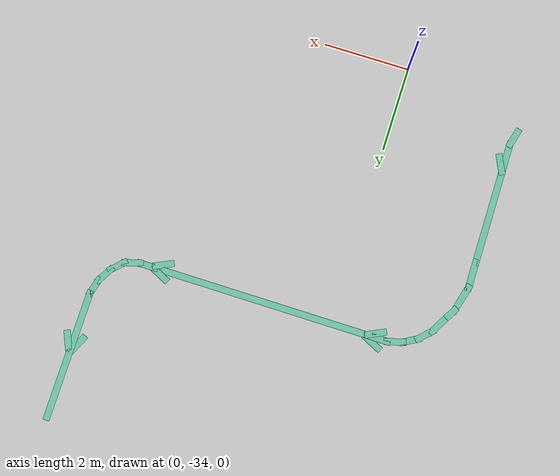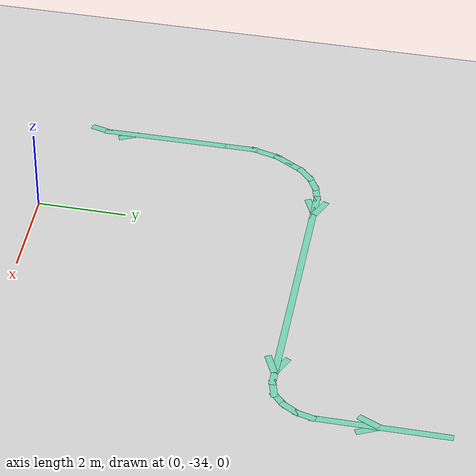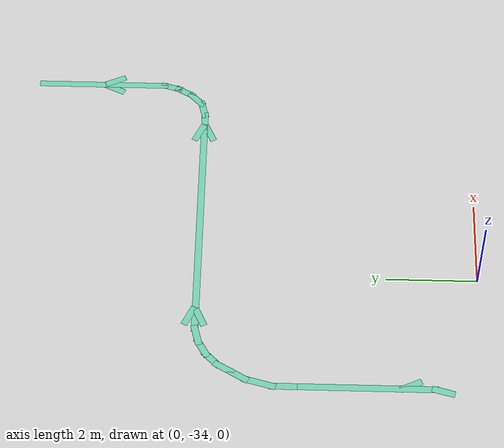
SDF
<sdf version="1.6">
 <world name="world">
  <model name="ground_plane">
   <static>1</static>
   <link name="link">
    <collision name="collision">
     <geometry><plane><normal>0 0 1</normal><size>100 100</size></plane></geometry>
     <surface><friction><ode><mu>100</mu><mu2>50</mu2></ode></friction></surface>
    </collision>
    <visual name="visual">
     <cast_shadows>0</cast_shadows>
     <geometry><plane><normal>0 0 1</normal><size>100 100</size></plane></geometry>
     <material>
      <script><uri>file://media/materials/scripts/gazebo.material</uri><name>Gazebo/Grey</name></script>
     </material>
    </visual>
   </link>
   <pose>0 0 -0.1 0 -0 0</pose>
  </model>
  <model name="path_hospital">
   <link name="Wall_10">
    <pose>6.85995 0.436094 0 0 0 -1.8326</pose>
    <visual name="Wall_10_Visual">
     <geometry><box><size>0.5 0.15 0</size></box></geometry>
     <material>
      <script><uri>file://media/materials/scripts/gazebo.material</uri><name>Gazebo/Grey</name></script>
      <ambient>0.435294 0.796078 0.67451 1</ambient>
      <shader type="pixel"/>
     </material>
     <meta><layer>0</layer></meta>
    </visual>
    <collision name="Wall_10_Collision">
     <geometry><box><size>0.5 0.15 0</size></box></geometry>
     <surface>
      <friction>
       <ode><mu>1</mu><mu2>1</mu2><fdir1>0 0 0</fdir1><slip1>0</slip1><slip2>0</slip2></ode>
       <torsional>
        <coefficient>1</coefficient>
        <patch_radius>0</patch_radius>
        <surface_radius>0</surface_radius>
        <use_patch_radius>1</use_patch_radius>
        <ode><slip>0</slip></ode>
       </torsional>
      </friction>
      <bounce><restitution_coefficient>0</restitution_coefficient><threshold>1e+06</threshold></bounce>
      <contact>
       <collide_without_contact>0</collide_without_contact>
       <collide_without_contact_bitmask>1</collide_without_contact_bitmask>
       <collide_bitmask>1</collide_bitmask>
       <ode>
        <soft_cfm>0</soft_cfm>
        <soft_erp>0.2</soft_erp>
        <kp>1e+13</kp>
        <kd>1</kd>
        <max_vel>0.01</max_vel>
        <min_depth>0</min_depth>
       </ode>
       <bullet>
        <split_impulse>1</split_impulse>
        <split_impulse_penetration_threshold>-0.01</split_impulse_penetration_threshold>
        <soft_cfm>0</soft_cfm>
        <soft_erp>0.2</soft_erp>
        <kp>1e+13</kp>
        <kd>1</kd>
       </bullet>
      </contact>
     </surface>
    </collision>
   </link>
   <link name="Wall_11">
    <pose>6.72715 0.115501 0 0 0 -2.0944</pose>
    <visual name="Wall_11_Visual">
     <geometry><box><size>0.5 0.15 0</size></box></geometry>
     <material>
      <script><uri>file://media/materials/scripts/gazebo.material</uri><name>Gazebo/Grey</name></script>
      <ambient>0.435294 0.796078 0.67451 1</ambient>
      <shader type="pixel"/>
     </material>
     <meta><layer>0</layer></meta>
    </visual>
    <collision name="Wall_11_Collision">
     <geometry><box><size>0.5 0.15 0</size></box></geometry>
     <surface>
      <friction>
       <ode><mu>1</mu><mu2>1</mu2><fdir1>0 0 0</fdir1><slip1>0</slip1><slip2>0</slip2></ode>
       <torsional>
        <coefficient>1</coefficient>
        <patch_radius>0</patch_radius>
        <surface_radius>0</surface_radius>
        <use_patch_radius>1</use_patch_radius>
        <ode><slip>0</slip></ode>
       </torsional>
      </friction>
      <bounce><restitution_coefficient>0</restitution_coefficient><threshold>1e+06</threshold></bounce>
      <contact>
       <collide_without_contact>0</collide_without_contact>
       <collide_without_contact_bitmask>1</collide_without_contact_bitmask>
       <collide_bitmask>1</collide_bitmask>
       <ode>
        <soft_cfm>0</soft_cfm>
        <soft_erp>0.2</soft_erp>
        <kp>1e+13</kp>
        <kd>1</kd>
        <max_vel>0.01</max_vel>
        <min_depth>0</min_depth>
       </ode>
       <bullet>
        <split_impulse>1</split_impulse>
        <split_impulse_penetration_threshold>-0.01</split_impulse_penetration_threshold>
        <soft_cfm>0</soft_cfm>
        <soft_erp>0.2</soft_erp>
        <kp>1e+13</kp>
        <kd>1</kd>
       </bullet>
      </contact>
     </surface>
    </collision>
   </link>
   <link name="Wall_12">
    <pose>6.51591 -0.159796 0 0 0 -2.35619</pose>
    <visual name="Wall_12_Visual">
     <geometry><box><size>0.5 0.15 0</size></box></geometry>
     <material>
      <script><uri>file://media/materials/scripts/gazebo.material</uri><name>Gazebo/Grey</name></script>
      <ambient>0.435294 0.796078 0.67451 1</ambient>
      <shader type="pixel"/>
     </material>
     <meta><layer>0</layer></meta>
    </visual>
    <collision name="Wall_12_Collision">
     <geometry><box><size>0.5 0.15 0</size></box></geometry>
     <surface>
      <friction>
       <ode><mu>1</mu><mu2>1</mu2><fdir1>0 0 0</fdir1><slip1>0</slip1><slip2>0</slip2></ode>
       <torsional>
        <coefficient>1</coefficient>
        <patch_radius>0</patch_radius>
        <surface_radius>0</surface_radius>
        <use_patch_radius>1</use_patch_radius>
        <ode><slip>0</slip></ode>
       </torsional>
      </friction>
      <bounce><restitution_coefficient>0</restitution_coefficient><threshold>1e+06</threshold></bounce>
      <contact>
       <collide_without_contact>0</collide_without_contact>
       <collide_without_contact_bitmask>1</collide_without_contact_bitmask>
       <collide_bitmask>1</collide_bitmask>
       <ode>
        <soft_cfm>0</soft_cfm>
        <soft_erp>0.2</soft_erp>
        <kp>1e+13</kp>
        <kd>1</kd>
        <max_vel>0.01</max_vel>
        <min_depth>0</min_depth>
       </ode>
       <bullet>
        <split_impulse>1</split_impulse>
        <split_impulse_penetration_threshold>-0.01</split_impulse_penetration_threshold>
        <soft_cfm>0</soft_cfm>
        <soft_erp>0.2</soft_erp>
        <kp>1e+13</kp>
        <kd>1</kd>
       </bullet>
      </contact>
     </surface>
    </collision>
   </link>
   <link name="Wall_13">
    <pose>6.22313 -0.328833 0 0 0 -2.87979</pose>
    <visual name="Wall_13_Visual">
     <geometry><box><size>0.5 0.15 0</size></box></geometry>
     <material>
      <script><uri>file://media/materials/scripts/gazebo.material</uri><name>Gazebo/Grey</name></script>
      <ambient>0.435294 0.796078 0.67451 1</ambient>
      <shader type="pixel"/>
     </material>
     <meta><layer>0</layer></meta>
    </visual>
    <collision name="Wall_13_Collision">
     <geometry><box><size>0.5 0.15 0</size></box></geometry>
     <surface>
      <friction>
       <ode><mu>1</mu><mu2>1</mu2><fdir1>0 0 0</fdir1><slip1>0</slip1><slip2>0</slip2></ode>
       <torsional>
        <coefficient>1</coefficient>
        <patch_radius>0</patch_radius>
        <surface_radius>0</surface_radius>
        <use_patch_radius>1</use_patch_radius>
        <ode><slip>0</slip></ode>
       </torsional>
      </friction>
      <bounce><restitution_coefficient>0</restitution_coefficient><threshold>1e+06</threshold></bounce>
      <contact>
       <collide_without_contact>0</collide_without_contact>
       <collide_without_contact_bitmask>1</collide_without_contact_bitmask>
       <collide_bitmask>1</collide_bitmask>
       <ode>
        <soft_cfm>0</soft_cfm>
        <soft_erp>0.2</soft_erp>
        <kp>1e+13</kp>
        <kd>1</kd>
        <max_vel>0.01</max_vel>
        <min_depth>0</min_depth>
       </ode>
       <bullet>
        <split_impulse>1</split_impulse>
        <split_impulse_penetration_threshold>-0.01</split_impulse_penetration_threshold>
        <soft_cfm>0</soft_cfm>
        <soft_erp>0.2</soft_erp>
        <kp>1e+13</kp>
        <kd>1</kd>
       </bullet>
      </contact>
     </surface>
    </collision>
   </link>
   <link name="Wall_14">
    <pose>5.87909 -0.374126 0 0 -0 3.14159</pose>
    <visual name="Wall_14_Visual">
     <geometry><box><size>0.5 0.15 0</size></box></geometry>
     <material>
      <script><uri>file://media/materials/scripts/gazebo.material</uri><name>Gazebo/Grey</name></script>
      <ambient>0.435294 0.796078 0.67451 1</ambient>
      <shader type="pixel"/>
     </material>
     <meta><layer>0</layer></meta>
    </visual>
    <collision name="Wall_14_Collision">
     <geometry><box><size>0.5 0.15 0</size></box></geometry>
     <surface>
      <friction>
       <ode><mu>1</mu><mu2>1</mu2><fdir1>0 0 0</fdir1><slip1>0</slip1><slip2>0</slip2></ode>
       <torsional>
        <coefficient>1</coefficient>
        <patch_radius>0</patch_radius>
        <surface_radius>0</surface_radius>
        <use_patch_radius>1</use_patch_radius>
        <ode><slip>0</slip></ode>
       </torsional>
      </friction>
      <bounce><restitution_coefficient>0</restitution_coefficient><threshold>1e+06</threshold></bounce>
      <contact>
       <collide_without_contact>0</collide_without_contact>
       <collide_without_contact_bitmask>1</collide_without_contact_bitmask>
       <collide_bitmask>1</collide_bitmask>
       <ode>
        <soft_cfm>0</soft_cfm>
        <soft_erp>0.2</soft_erp>
        <kp>1e+13</kp>
        <kd>1</kd>
        <max_vel>0.01</max_vel>
        <min_depth>0</min_depth>
       </ode>
       <bullet>
        <split_impulse>1</split_impulse>
        <split_impulse_penetration_threshold>-0.01</split_impulse_penetration_threshold>
        <soft_cfm>0</soft_cfm>
        <soft_erp>0.2</soft_erp>
        <kp>1e+13</kp>
        <kd>1</kd>
       </bullet>
      </contact>
     </surface>
    </collision>
   </link>
   <link name="Wall_15">
    <pose>3.27909 -0.374126 0 0 -0 3.14159</pose>
    <visual name="Wall_15_Visual">
     <geometry><box><size>5 0.15 0</size></box></geometry>
     <material>
      <script><uri>file://media/materials/scripts/gazebo.material</uri><name>Gazebo/Grey</name></script>
      <ambient>0.435294 0.796078 0.67451 1</ambient>
      <shader type="pixel"/>
     </material>
     <meta><layer>0</layer></meta>
    </visual>
    <collision name="Wall_15_Collision">
     <geometry><box><size>5 0.15 0</size></box></geometry>
     <surface>
      <friction>
       <ode><mu>1</mu><mu2>1</mu2><fdir1>0 0 0</fdir1><slip1>0</slip1><slip2>0</slip2></ode>
       <torsional>
        <coefficient>1</coefficient>
        <patch_radius>0</patch_radius>
        <surface_radius>0</surface_radius>
        <use_patch_radius>1</use_patch_radius>
        <ode><slip>0</slip></ode>
       </torsional>
      </friction>
      <bounce><restitution_coefficient>0</restitution_coefficient><threshold>1e+06</threshold></bounce>
      <contact>
       <collide_without_contact>0</collide_without_contact>
       <collide_without_contact_bitmask>1</collide_without_contact_bitmask>
       <collide_bitmask>1</collide_bitmask>
       <ode>
        <soft_cfm>0</soft_cfm>
        <soft_erp>0.2</soft_erp>
        <kp>1e+13</kp>
        <kd>1</kd>
        <max_vel>0.01</max_vel>
        <min_depth>0</min_depth>
       </ode>
       <bullet>
        <split_impulse>1</split_impulse>
        <split_impulse_penetration_threshold>-0.01</split_impulse_penetration_threshold>
        <soft_cfm>0</soft_cfm>
        <soft_erp>0.2</soft_erp>
        <kp>1e+13</kp>
        <kd>1</kd>
       </bullet>
      </contact>
     </surface>
    </collision>
   </link>
   <link name="Wall_16">
    <pose>0.554091 -0.374126 0 0 -0 3.14159</pose>
    <visual name="Wall_16_Visual">
     <geometry><box><size>0.75 0.15 0</size></box></geometry>
     <material>
      <script><uri>file://media/materials/scripts/gazebo.material</uri><name>Gazebo/Grey</name></script>
      <ambient>0.435294 0.796078 0.67451 1</ambient>
      <shader type="pixel"/>
     </material>
     <meta><layer>0</layer></meta>
    </visual>
    <collision name="Wall_16_Collision">
     <geometry><box><size>0.75 0.15 0</size></box></geometry>
     <surface>
      <friction>
       <ode><mu>1</mu><mu2>1</mu2><fdir1>0 0 0</fdir1><slip1>0</slip1><slip2>0</slip2></ode>
       <torsional>
        <coefficient>1</coefficient>
        <patch_radius>0</patch_radius>
        <surface_radius>0</surface_radius>
        <use_patch_radius>1</use_patch_radius>
        <ode><slip>0</slip></ode>
       </torsional>
      </friction>
      <bounce><restitution_coefficient>0</restitution_coefficient><threshold>1e+06</threshold></bounce>
      <contact>
       <collide_without_contact>0</collide_without_contact>
       <collide_without_contact_bitmask>1</collide_without_contact_bitmask>
       <collide_bitmask>1</collide_bitmask>
       <ode>
        <soft_cfm>0</soft_cfm>
        <soft_erp>0.2</soft_erp>
        <kp>1e+13</kp>
        <kd>1</kd>
        <max_vel>0.01</max_vel>
        <min_depth>0</min_depth>
       </ode>
       <bullet>
        <split_impulse>1</split_impulse>
        <split_impulse_penetration_threshold>-0.01</split_impulse_penetration_threshold>
        <soft_cfm>0</soft_cfm>
        <soft_erp>0.2</soft_erp>
        <kp>1e+13</kp>
        <kd>1</kd>
       </bullet>
      </contact>
     </surface>
    </collision>
   </link>
   <link name="Wall_17">
    <pose>0.085054 -0.41942 0 0 0 -2.87979</pose>
    <visual name="Wall_17_Visual">
     <geometry><box><size>0.5 0.15 0</size></box></geometry>
     <material>
      <script><uri>file://media/materials/scripts/gazebo.material</uri><name>Gazebo/Grey</name></script>
      <ambient>0.435294 0.796078 0.67451 1</ambient>
      <shader type="pixel"/>
     </material>
     <meta><layer>0</layer></meta>
    </visual>
    <collision name="Wall_17_Collision">
     <geometry><box><size>0.5 0.15 0</size></box></geometry>
     <surface>
      <friction>
       <ode><mu>1</mu><mu2>1</mu2><fdir1>0 0 0</fdir1><slip1>0</slip1><slip2>0</slip2></ode>
       <torsional>
        <coefficient>1</coefficient>
        <patch_radius>0</patch_radius>
        <surface_radius>0</surface_radius>
        <use_patch_radius>1</use_patch_radius>
        <ode><slip>0</slip></ode>
       </torsional>
      </friction>
      <bounce><restitution_coefficient>0</restitution_coefficient><threshold>1e+06</threshold></bounce>
      <contact>
       <collide_without_contact>0</collide_without_contact>
       <collide_without_contact_bitmask>1</collide_without_contact_bitmask>
       <collide_bitmask>1</collide_bitmask>
       <ode>
        <soft_cfm>0</soft_cfm>
        <soft_erp>0.2</soft_erp>
        <kp>1e+13</kp>
        <kd>1</kd>
        <max_vel>0.01</max_vel>
        <min_depth>0</min_depth>
       </ode>
       <bullet>
        <split_impulse>1</split_impulse>
        <split_impulse_penetration_threshold>-0.01</split_impulse_penetration_threshold>
        <soft_cfm>0</soft_cfm>
        <soft_erp>0.2</soft_erp>
        <kp>1e+13</kp>
        <kd>1</kd>
       </bullet>
      </contact>
     </surface>
    </collision>
   </link>
   <link name="Wall_18">
    <pose>-0.235537 -0.552214 0 0 0 -2.61799</pose>
    <visual name="Wall_18_Visual">
     <geometry><box><size>0.5 0.15 0</size></box></geometry>
     <material>
      <script><uri>file://media/materials/scripts/gazebo.material</uri><name>Gazebo/Grey</name></script>
      <ambient>0.435294 0.796078 0.67451 1</ambient>
      <shader type="pixel"/>
     </material>
     <meta><layer>0</layer></meta>
    </visual>
    <collision name="Wall_18_Collision">
     <geometry><box><size>0.5 0.15 0</size></box></geometry>
     <surface>
      <friction>
       <ode><mu>1</mu><mu2>1</mu2><fdir1>0 0 0</fdir1><slip1>0</slip1><slip2>0</slip2></ode>
       <torsional>
        <coefficient>1</coefficient>
        <patch_radius>0</patch_radius>
        <surface_radius>0</surface_radius>
        <use_patch_radius>1</use_patch_radius>
        <ode><slip>0</slip></ode>
       </torsional>
      </friction>
      <bounce><restitution_coefficient>0</restitution_coefficient><threshold>1e+06</threshold></bounce>
      <contact>
       <collide_without_contact>0</collide_without_contact>
       <collide_without_contact_bitmask>1</collide_without_contact_bitmask>
       <collide_bitmask>1</collide_bitmask>
       <ode>
        <soft_cfm>0</soft_cfm>
        <soft_erp>0.2</soft_erp>
        <kp>1e+13</kp>
        <kd>1</kd>
        <max_vel>0.01</max_vel>
        <min_depth>0</min_depth>
       </ode>
       <bullet>
        <split_impulse>1</split_impulse>
        <split_impulse_penetration_threshold>-0.01</split_impulse_penetration_threshold>
        <soft_cfm>0</soft_cfm>
        <soft_erp>0.2</soft_erp>
        <kp>1e+13</kp>
        <kd>1</kd>
       </bullet>
      </contact>
     </surface>
    </collision>
   </link>
   <link name="Wall_19">
    <pose>-0.510835 -0.763456 0 0 0 -2.35619</pose>
    <visual name="Wall_19_Visual">
     <geometry><box><size>0.5 0.15 0</size></box></geometry>
     <material>
      <script><uri>file://media/materials/scripts/gazebo.material</uri><name>Gazebo/Grey</name></script>
      <ambient>0.435294 0.796078 0.67451 1</ambient>
      <shader type="pixel"/>
     </material>
     <meta><layer>0</layer></meta>
    </visual>
    <collision name="Wall_19_Collision">
     <geometry><box><size>0.5 0.15 0</size></box></geometry>
     <surface>
      <friction>
       <ode><mu>1</mu><mu2>1</mu2><fdir1>0 0 0</fdir1><slip1>0</slip1><slip2>0</slip2></ode>
       <torsional>
        <coefficient>1</coefficient>
        <patch_radius>0</patch_radius>
        <surface_radius>0</surface_radius>
        <use_patch_radius>1</use_patch_radius>
        <ode><slip>0</slip></ode>
       </torsional>
      </friction>
      <bounce><restitution_coefficient>0</restitution_coefficient><threshold>1e+06</threshold></bounce>
      <contact>
       <collide_without_contact>0</collide_without_contact>
       <collide_without_contact_bitmask>1</collide_without_contact_bitmask>
       <collide_bitmask>1</collide_bitmask>
       <ode>
        <soft_cfm>0</soft_cfm>
        <soft_erp>0.2</soft_erp>
        <kp>1e+13</kp>
        <kd>1</kd>
        <max_vel>0.01</max_vel>
        <min_depth>0</min_depth>
       </ode>
       <bullet>
        <split_impulse>1</split_impulse>
        <split_impulse_penetration_threshold>-0.01</split_impulse_penetration_threshold>
        <soft_cfm>0</soft_cfm>
        <soft_erp>0.2</soft_erp>
        <kp>1e+13</kp>
        <kd>1</kd>
       </bullet>
      </contact>
     </surface>
    </collision>
   </link>
   <link name="Wall_20">
    <pose>-0.722079 -1.03876 0 0 0 -2.0944</pose>
    <visual name="Wall_20_Visual">
     <geometry><box><size>0.5 0.15 0</size></box></geometry>
     <material>
      <script><uri>file://media/materials/scripts/gazebo.material</uri><name>Gazebo/Grey</name></script>
      <ambient>0.435294 0.796078 0.67451 1</ambient>
      <shader type="pixel"/>
     </material>
     <meta><layer>0</layer></meta>
    </visual>
    <collision name="Wall_20_Collision">
     <geometry><box><size>0.5 0.15 0</size></box></geometry>
     <surface>
      <friction>
       <ode><mu>1</mu><mu2>1</mu2><fdir1>0 0 0</fdir1><slip1>0</slip1><slip2>0</slip2></ode>
       <torsional>
        <coefficient>1</coefficient>
        <patch_radius>0</patch_radius>
        <surface_radius>0</surface_radius>
        <use_patch_radius>1</use_patch_radius>
        <ode><slip>0</slip></ode>
       </torsional>
      </friction>
      <bounce><restitution_coefficient>0</restitution_coefficient><threshold>1e+06</threshold></bounce>
      <contact>
       <collide_without_contact>0</collide_without_contact>
       <collide_without_contact_bitmask>1</collide_without_contact_bitmask>
       <collide_bitmask>1</collide_bitmask>
       <ode>
        <soft_cfm>0</soft_cfm>
        <soft_erp>0.2</soft_erp>
        <kp>1e+13</kp>
        <kd>1</kd>
        <max_vel>0.01</max_vel>
        <min_depth>0</min_depth>
       </ode>
       <bullet>
        <split_impulse>1</split_impulse>
        <split_impulse_penetration_threshold>-0.01</split_impulse_penetration_threshold>
        <soft_cfm>0</soft_cfm>
        <soft_erp>0.2</soft_erp>
        <kp>1e+13</kp>
        <kd>1</kd>
       </bullet>
      </contact>
     </surface>
    </collision>
   </link>
   <link name="Wall_21">
    <pose>-0.897079 -1.34186 0 0 0 -2.0944</pose>
    <visual name="Wall_21_Visual">
     <geometry><box><size>0.5 0.15 0</size></box></geometry>
     <material>
      <script><uri>file://media/materials/scripts/gazebo.material</uri><name>Gazebo/Grey</name></script>
      <ambient>0.435294 0.796078 0.67451 1</ambient>
      <shader type="pixel"/>
     </material>
     <meta><layer>0</layer></meta>
    </visual>
    <collision name="Wall_21_Collision">
     <geometry><box><size>0.5 0.15 0</size></box></geometry>
     <surface>
      <friction>
       <ode><mu>1</mu><mu2>1</mu2><fdir1>0 0 0</fdir1><slip1>0</slip1><slip2>0</slip2></ode>
       <torsional>
        <coefficient>1</coefficient>
        <patch_radius>0</patch_radius>
        <surface_radius>0</surface_radius>
        <use_patch_radius>1</use_patch_radius>
        <ode><slip>0</slip></ode>
       </torsional>
      </friction>
      <bounce><restitution_coefficient>0</restitution_coefficient><threshold>1e+06</threshold></bounce>
      <contact>
       <collide_without_contact>0</collide_without_contact>
       <collide_without_contact_bitmask>1</collide_without_contact_bitmask>
       <collide_bitmask>1</collide_bitmask>
       <ode>
        <soft_cfm>0</soft_cfm>
        <soft_erp>0.2</soft_erp>
        <kp>1e+13</kp>
        <kd>1</kd>
        <max_vel>0.01</max_vel>
        <min_depth>0</min_depth>
       </ode>
       <bullet>
        <split_impulse>1</split_impulse>
        <split_impulse_penetration_threshold>-0.01</split_impulse_penetration_threshold>
        <soft_cfm>0</soft_cfm>
        <soft_erp>0.2</soft_erp>
        <kp>1e+13</kp>
        <kd>1</kd>
       </bullet>
      </contact>
     </surface>
    </collision>
   </link>
   <link name="Wall_22">
    <pose>-1.06222 -1.7832 0 0 0 -1.8326</pose>
    <visual name="Wall_22_Visual">
     <geometry><box><size>0.75 0.15 0</size></box></geometry>
     <material>
      <script><uri>file://media/materials/scripts/gazebo.material</uri><name>Gazebo/Grey</name></script>
      <ambient>0.435294 0.796078 0.67451 1</ambient>
      <shader type="pixel"/>
     </material>
     <meta><layer>0</layer></meta>
    </visual>
    <collision name="Wall_22_Collision">
     <geometry><box><size>0.75 0.15 0</size></box></geometry>
     <surface>
      <friction>
       <ode><mu>1</mu><mu2>1</mu2><fdir1>0 0 0</fdir1><slip1>0</slip1><slip2>0</slip2></ode>
       <torsional>
        <coefficient>1</coefficient>
        <patch_radius>0</patch_radius>
        <surface_radius>0</surface_radius>
        <use_patch_radius>1</use_patch_radius>
        <ode><slip>0</slip></ode>
       </torsional>
      </friction>
      <bounce><restitution_coefficient>0</restitution_coefficient><threshold>1e+06</threshold></bounce>
      <contact>
       <collide_without_contact>0</collide_without_contact>
       <collide_without_contact_bitmask>1</collide_without_contact_bitmask>
       <collide_bitmask>1</collide_bitmask>
       <ode>
        <soft_cfm>0</soft_cfm>
        <soft_erp>0.2</soft_erp>
        <kp>1e+13</kp>
        <kd>1</kd>
        <max_vel>0.01</max_vel>
        <min_depth>0</min_depth>
       </ode>
       <bullet>
        <split_impulse>1</split_impulse>
        <split_impulse_penetration_threshold>-0.01</split_impulse_penetration_threshold>
        <soft_cfm>0</soft_cfm>
        <soft_erp>0.2</soft_erp>
        <kp>1e+13</kp>
        <kd>1</kd>
       </bullet>
      </contact>
     </surface>
    </collision>
   </link>
   <link name="Wall_23">
    <pose>-1.13987 -2.37297 0 0 0 -1.5708</pose>
    <visual name="Wall_23_Visual">
     <geometry><box><size>0.75 0.15 0</size></box></geometry>
     <material>
      <script><uri>file://media/materials/scripts/gazebo.material</uri><name>Gazebo/Grey</name></script>
      <ambient>0.435294 0.796078 0.67451 1</ambient>
      <shader type="pixel"/>
     </material>
     <meta><layer>0</layer></meta>
    </visual>
    <collision name="Wall_23_Collision">
     <geometry><box><size>0.75 0.15 0</size></box></geometry>
     <surface>
      <friction>
       <ode><mu>1</mu><mu2>1</mu2><fdir1>0 0 0</fdir1><slip1>0</slip1><slip2>0</slip2></ode>
       <torsional>
        <coefficient>1</coefficient>
        <patch_radius>0</patch_radius>
        <surface_radius>0</surface_radius>
        <use_patch_radius>1</use_patch_radius>
        <ode><slip>0</slip></ode>
       </torsional>
      </friction>
      <bounce><restitution_coefficient>0</restitution_coefficient><threshold>1e+06</threshold></bounce>
      <contact>
       <collide_without_contact>0</collide_without_contact>
       <collide_without_contact_bitmask>1</collide_without_contact_bitmask>
       <collide_bitmask>1</collide_bitmask>
       <ode>
        <soft_cfm>0</soft_cfm>
        <soft_erp>0.2</soft_erp>
        <kp>1e+13</kp>
        <kd>1</kd>
        <max_vel>0.01</max_vel>
        <min_depth>0</min_depth>
       </ode>
       <bullet>
        <split_impulse>1</split_impulse>
        <split_impulse_penetration_threshold>-0.01</split_impulse_penetration_threshold>
        <soft_cfm>0</soft_cfm>
        <soft_erp>0.2</soft_erp>
        <kp>1e+13</kp>
        <kd>1</kd>
       </bullet>
      </contact>
     </surface>
    </collision>
   </link>
   <link name="Wall_24">
    <pose>-1.13987 -4.09797 0 0 0 -1.5708</pose>
    <visual name="Wall_24_Visual">
     <geometry><box><size>3 0.15 0</size></box></geometry>
     <material>
      <script><uri>file://media/materials/scripts/gazebo.material</uri><name>Gazebo/Grey</name></script>
      <ambient>0.435294 0.796078 0.67451 1</ambient>
      <shader type="pixel"/>
     </material>
     <meta><layer>0</layer></meta>
    </visual>
    <collision name="Wall_24_Collision">
     <geometry><box><size>3 0.15 0</size></box></geometry>
     <surface>
      <friction>
       <ode><mu>1</mu><mu2>1</mu2><fdir1>0 0 0</fdir1><slip1>0</slip1><slip2>0</slip2></ode>
       <torsional>
        <coefficient>1</coefficient>
        <patch_radius>0</patch_radius>
        <surface_radius>0</surface_radius>
        <use_patch_radius>1</use_patch_radius>
        <ode><slip>0</slip></ode>
       </torsional>
      </friction>
      <bounce><restitution_coefficient>0</restitution_coefficient><threshold>1e+06</threshold></bounce>
      <contact>
       <collide_without_contact>0</collide_without_contact>
       <collide_without_contact_bitmask>1</collide_without_contact_bitmask>
       <collide_bitmask>1</collide_bitmask>
       <ode>
        <soft_cfm>0</soft_cfm>
        <soft_erp>0.2</soft_erp>
        <kp>1e+13</kp>
        <kd>1</kd>
        <max_vel>0.01</max_vel>
        <min_depth>0</min_depth>
       </ode>
       <bullet>
        <split_impulse>1</split_impulse>
        <split_impulse_penetration_threshold>-0.01</split_impulse_penetration_threshold>
        <soft_cfm>0</soft_cfm>
        <soft_erp>0.2</soft_erp>
        <kp>1e+13</kp>
        <kd>1</kd>
       </bullet>
      </contact>
     </surface>
    </collision>
   </link>
   <link name="Wall_25">
    <pose>-1.18516 -5.69201 0 0 0 -1.8326</pose>
    <visual name="Wall_25_Visual">
     <geometry><box><size>0.5 0.15 0</size></box></geometry>
     <material>
      <script><uri>file://media/materials/scripts/gazebo.material</uri><name>Gazebo/Grey</name></script>
      <ambient>0.435294 0.796078 0.67451 1</ambient>
      <shader type="pixel"/>
     </material>
     <meta><layer>0</layer></meta>
    </visual>
    <collision name="Wall_25_Collision">
     <geometry><box><size>0.5 0.15 0</size></box></geometry>
     <surface>
      <friction>
       <ode><mu>1</mu><mu2>1</mu2><fdir1>0 0 0</fdir1><slip1>0</slip1><slip2>0</slip2></ode>
       <torsional>
        <coefficient>1</coefficient>
        <patch_radius>0</patch_radius>
        <surface_radius>0</surface_radius>
        <use_patch_radius>1</use_patch_radius>
        <ode><slip>0</slip></ode>
       </torsional>
      </friction>
      <bounce><restitution_coefficient>0</restitution_coefficient><threshold>1e+06</threshold></bounce>
      <contact>
       <collide_without_contact>0</collide_without_contact>
       <collide_without_contact_bitmask>1</collide_without_contact_bitmask>
       <collide_bitmask>1</collide_bitmask>
       <ode>
        <soft_cfm>0</soft_cfm>
        <soft_erp>0.2</soft_erp>
        <kp>1e+13</kp>
        <kd>1</kd>
        <max_vel>0.01</max_vel>
        <min_depth>0</min_depth>
       </ode>
       <bullet>
        <split_impulse>1</split_impulse>
        <split_impulse_penetration_threshold>-0.01</split_impulse_penetration_threshold>
        <soft_cfm>0</soft_cfm>
        <soft_erp>0.2</soft_erp>
        <kp>1e+13</kp>
        <kd>1</kd>
       </bullet>
      </contact>
     </surface>
    </collision>
   </link>
   <link name="Wall_60_clone_clone_clone_0_clone_0_clone">
    <pose>0.548707 -0.466925 0 0 0 -2.7</pose>
    <inertial>
     <mass>1</mass>
     <inertia><ixx>1</ixx><ixy>0</ixy><ixz>0</ixz><iyy>1</iyy><iyz>0</iyz><izz>1</izz></inertia>
    </inertial>
    <visual name="Wall_60_Visual">
     <geometry><box><size>0.5 0.15 0</size></box></geometry>
     <material>
      <script><uri>file://media/materials/scripts/gazebo.material</uri><name>Gazebo/Grey</name></script>
      <ambient>0.435 0.796 0.675 1</ambient>
      <shader type="pixel"><normal_map>__default__</normal_map></shader>
      <diffuse>0.7 0.7 0.7 1</diffuse>
      <specular>0.01 0.01 0.01 1</specular>
      <emissive>0 0 0 1</emissive>
     </material>
     <meta><layer>0</layer></meta>
    </visual>
    <collision name="Wall_60_Collision">
     <geometry><box><size>0.5 0.15 0</size></box></geometry>
     <surface>
      <friction>
       <ode><mu>1</mu><mu2>1</mu2><fdir1>0 0 0</fdir1><slip1>0</slip1><slip2>0</slip2></ode>
       <torsional>
        <coefficient>1</coefficient>
        <patch_radius>0</patch_radius>
        <surface_radius>0</surface_radius>
        <use_patch_radius>1</use_patch_radius>
        <ode><slip>0</slip></ode>
       </torsional>
      </friction>
      <bounce><restitution_coefficient>0</restitution_coefficient><threshold>1e+06</threshold></bounce>
      <contact>
       <collide_without_contact>0</collide_without_contact>
       <collide_without_contact_bitmask>1</collide_without_contact_bitmask>
       <collide_bitmask>1</collide_bitmask>
       <ode>
        <soft_cfm>0</soft_cfm>
        <soft_erp>0.2</soft_erp>
        <kp>1e+13</kp>
        <kd>1</kd>
        <max_vel>0.01</max_vel>
        <min_depth>0</min_depth>
       </ode>
       <bullet>
        <split_impulse>1</split_impulse>
        <split_impulse_penetration_threshold>-0.01</split_impulse_penetration_threshold>
        <soft_cfm>0</soft_cfm>
        <soft_erp>0.2</soft_erp>
        <kp>1e+13</kp>
        <kd>1</kd>
       </bullet>
      </contact>
     </surface>
    </collision>
   </link>
   <link name="Wall_60_clone_clone_clone_0_clone_0_clone_0">
    <pose>5.54557 -0.495459 0 0 0 -2.7</pose>
    <inertial>
     <mass>1</mass>
     <inertia><ixx>1</ixx><ixy>0</ixy><ixz>0</ixz><iyy>1</iyy><iyz>0</iyz><izz>1</izz></inertia>
    </inertial>
    <visual name="Wall_60_Visual">
     <geometry><box><size>0.5 0.15 0</size></box></geometry>
     <material>
      <script><uri>file://media/materials/scripts/gazebo.material</uri><name>Gazebo/Grey</name></script>
      <ambient>0.435 0.796 0.675 1</ambient>
      <shader type="pixel"><normal_map>__default__</normal_map></shader>
      <diffuse>0.7 0.7 0.7 1</diffuse>
      <specular>0.01 0.01 0.01 1</specular>
      <emissive>0 0 0 1</emissive>
     </material>
     <meta><layer>0</layer></meta>
    </visual>
    <collision name="Wall_60_Collision">
     <geometry><box><size>0.5 0.15 0</size></box></geometry>
     <surface>
      <friction>
       <ode><mu>1</mu><mu2>1</mu2><fdir1>0 0 0</fdir1><slip1>0</slip1><slip2>0</slip2></ode>
       <torsional>
        <coefficient>1</coefficient>
        <patch_radius>0</patch_radius>
        <surface_radius>0</surface_radius>
        <use_patch_radius>1</use_patch_radius>
        <ode><slip>0</slip></ode>
       </torsional>
      </friction>
      <bounce><restitution_coefficient>0</restitution_coefficient><threshold>1e+06</threshold></bounce>
      <contact>
       <collide_without_contact>0</collide_without_contact>
       <collide_without_contact_bitmask>1</collide_without_contact_bitmask>
       <collide_bitmask>1</collide_bitmask>
       <ode>
        <soft_cfm>0</soft_cfm>
        <soft_erp>0.2</soft_erp>
        <kp>1e+13</kp>
        <kd>1</kd>
        <max_vel>0.01</max_vel>
        <min_depth>0</min_depth>
       </ode>
       <bullet>
        <split_impulse>1</split_impulse>
        <split_impulse_penetration_threshold>-0.01</split_impulse_penetration_threshold>
        <soft_cfm>0</soft_cfm>
        <soft_erp>0.2</soft_erp>
        <kp>1e+13</kp>
        <kd>1</kd>
       </bullet>
      </contact>
     </surface>
    </collision>
   </link>
   <link name="Wall_60_clone_clone_clone_1_clone_clone_clone">
    <pose>-1.05895 -5.01023 0 0 -0 2</pose>
    <inertial>
     <mass>1</mass>
     <inertia><ixx>1</ixx><ixy>0</ixy><ixz>0</ixz><iyy>1</iyy><iyz>0</iyz><izz>1</izz></inertia>
    </inertial>
    <visual name="Wall_60_Visual">
     <geometry><box><size>0.5 0.15 0</size></box></geometry>
     <material>
      <script><uri>file://media/materials/scripts/gazebo.material</uri><name>Gazebo/Grey</name></script>
      <ambient>0.435 0.796 0.675 1</ambient>
      <shader type="pixel"><normal_map>__default__</normal_map></shader>
      <diffuse>0.7 0.7 0.7 1</diffuse>
      <specular>0.01 0.01 0.01 1</specular>
      <emissive>0 0 0 1</emissive>
     </material>
     <meta><layer>0</layer></meta>
    </visual>
    <collision name="Wall_60_Collision">
     <geometry><box><size>0.5 0.15 0</size></box></geometry>
     <surface>
      <friction>
       <ode><mu>1</mu><mu2>1</mu2><fdir1>0 0 0</fdir1><slip1>0</slip1><slip2>0</slip2></ode>
       <torsional>
        <coefficient>1</coefficient>
        <patch_radius>0</patch_radius>
        <surface_radius>0</surface_radius>
        <use_patch_radius>1</use_patch_radius>
        <ode><slip>0</slip></ode>
       </torsional>
      </friction>
      <bounce><restitution_coefficient>0</restitution_coefficient><threshold>1e+06</threshold></bounce>
      <contact>
       <collide_without_contact>0</collide_without_contact>
       <collide_without_contact_bitmask>1</collide_without_contact_bitmask>
       <collide_bitmask>1</collide_bitmask>
       <ode>
        <soft_cfm>0</soft_cfm>
        <soft_erp>0.2</soft_erp>
        <kp>1e+13</kp>
        <kd>1</kd>
        <max_vel>0.01</max_vel>
        <min_depth>0</min_depth>
       </ode>
       <bullet>
        <split_impulse>1</split_impulse>
        <split_impulse_penetration_threshold>-0.01</split_impulse_penetration_threshold>
        <soft_cfm>0</soft_cfm>
        <soft_erp>0.2</soft_erp>
        <kp>1e+13</kp>
        <kd>1</kd>
       </bullet>
      </contact>
     </surface>
    </collision>
   </link>
   <link name="Wall_60_clone_clone_clone_1_clone_clone_clone_clone">
    <pose>7.01816 1.75825 0 0 -0 2</pose>
    <inertial>
     <mass>1</mass>
     <inertia><ixx>1</ixx><ixy>0</ixy><ixz>0</ixz><iyy>1</iyy><iyz>0</iyz><izz>1</izz></inertia>
    </inertial>
    <visual name="Wall_60_Visual">
     <geometry><box><size>0.5 0.15 0</size></box></geometry>
     <material>
      <script><uri>file://media/materials/scripts/gazebo.material</uri><name>Gazebo/Grey</name></script>
      <ambient>0.435 0.796 0.675 1</ambient>
      <shader type="pixel"><normal_map>__default__</normal_map></shader>
      <diffuse>0.7 0.7 0.7 1</diffuse>
      <specular>0.01 0.01 0.01 1</specular>
      <emissive>0 0 0 1</emissive>
     </material>
     <meta><layer>0</layer></meta>
    </visual>
    <collision name="Wall_60_Collision">
     <geometry><box><size>0.5 0.15 0</size></box></geometry>
     <surface>
      <friction>
       <ode><mu>1</mu><mu2>1</mu2><fdir1>0 0 0</fdir1><slip1>0</slip1><slip2>0</slip2></ode>
       <torsional>
        <coefficient>1</coefficient>
        <patch_radius>0</patch_radius>
        <surface_radius>0</surface_radius>
        <use_patch_radius>1</use_patch_radius>
        <ode><slip>0</slip></ode>
       </torsional>
      </friction>
      <bounce><restitution_coefficient>0</restitution_coefficient><threshold>1e+06</threshold></bounce>
      <contact>
       <collide_without_contact>0</collide_without_contact>
       <collide_without_contact_bitmask>1</collide_without_contact_bitmask>
       <collide_bitmask>1</collide_bitmask>
       <ode>
        <soft_cfm>0</soft_cfm>
        <soft_erp>0.2</soft_erp>
        <kp>1e+13</kp>
        <kd>1</kd>
        <max_vel>0.01</max_vel>
        <min_depth>0</min_depth>
       </ode>
       <bullet>
        <split_impulse>1</split_impulse>
        <split_impulse_penetration_threshold>-0.01</split_impulse_penetration_threshold>
        <soft_cfm>0</soft_cfm>
        <soft_erp>0.2</soft_erp>
        <kp>1e+13</kp>
        <kd>1</kd>
       </bullet>
      </contact>
     </surface>
    </collision>
   </link>
   <link name="Wall_60_clone_clone_clone_2_clone_clone_clone_clone_clone">
    <pose>6.79005 1.76039 0 0 0 -2</pose>
    <inertial>
     <mass>1</mass>
     <inertia><ixx>1</ixx><ixy>0</ixy><ixz>0</ixz><iyy>1</iyy><iyz>0</iyz><izz>1</izz></inertia>
    </inertial>
    <visual name="Wall_60_Visual">
     <geometry><box><size>0.5 0.15 0</size></box></geometry>
     <material>
      <script><uri>file://media/materials/scripts/gazebo.material</uri><name>Gazebo/Grey</name></script>
      <ambient>0.435 0.796 0.675 1</ambient>
      <shader type="pixel"><normal_map>__default__</normal_map></shader>
      <diffuse>0.7 0.7 0.7 1</diffuse>
      <specular>0.01 0.01 0.01 1</specular>
      <emissive>0 0 0 1</emissive>
     </material>
     <meta><layer>0</layer></meta>
    </visual>
    <collision name="Wall_60_Collision">
     <geometry><box><size>0.5 0.15 0</size></box></geometry>
     <surface>
      <friction>
       <ode><mu>1</mu><mu2>1</mu2><fdir1>0 0 0</fdir1><slip1>0</slip1><slip2>0</slip2></ode>
       <torsional>
        <coefficient>1</coefficient>
        <patch_radius>0</patch_radius>
        <surface_radius>0</surface_radius>
        <use_patch_radius>1</use_patch_radius>
        <ode><slip>0</slip></ode>
       </torsional>
      </friction>
      <bounce><restitution_coefficient>0</restitution_coefficient><threshold>1e+06</threshold></bounce>
      <contact>
       <collide_without_contact>0</collide_without_contact>
       <collide_without_contact_bitmask>1</collide_without_contact_bitmask>
       <collide_bitmask>1</collide_bitmask>
       <ode>
        <soft_cfm>0</soft_cfm>
        <soft_erp>0.2</soft_erp>
        <kp>1e+13</kp>
        <kd>1</kd>
        <max_vel>0.01</max_vel>
        <min_depth>0</min_depth>
       </ode>
       <bullet>
        <split_impulse>1</split_impulse>
        <split_impulse_penetration_threshold>-0.01</split_impulse_penetration_threshold>
        <soft_cfm>0</soft_cfm>
        <soft_erp>0.2</soft_erp>
        <kp>1e+13</kp>
        <kd>1</kd>
       </bullet>
      </contact>
     </surface>
    </collision>
   </link>
   <link name="Wall_60_clone_clone_clone_clone_0_clone">
    <pose>0.56681 -0.246664 0 0 -0 2.7</pose>
    <inertial>
     <mass>1</mass>
     <inertia><ixx>1</ixx><ixy>0</ixy><ixz>0</ixz><iyy>1</iyy><iyz>0</iyz><izz>1</izz></inertia>
    </inertial>
    <visual name="Wall_60_Visual">
     <geometry><box><size>0.5 0.15 0</size></box></geometry>
     <material>
      <script><uri>file://media/materials/scripts/gazebo.material</uri><name>Gazebo/Grey</name></script>
      <ambient>0.435 0.796 0.675 1</ambient>
      <shader type="pixel"><normal_map>__default__</normal_map></shader>
      <diffuse>0.7 0.7 0.7 1</diffuse>
      <specular>0.01 0.01 0.01 1</specular>
      <emissive>0 0 0 1</emissive>
     </material>
     <meta><layer>0</layer></meta>
    </visual>
    <collision name="Wall_60_Collision">
     <geometry><box><size>0.5 0.15 0</size></box></geometry>
     <surface>
      <friction>
       <ode><mu>1</mu><mu2>1</mu2><fdir1>0 0 0</fdir1><slip1>0</slip1><slip2>0</slip2></ode>
       <torsional>
        <coefficient>1</coefficient>
        <patch_radius>0</patch_radius>
        <surface_radius>0</surface_radius>
        <use_patch_radius>1</use_patch_radius>
        <ode><slip>0</slip></ode>
       </torsional>
      </friction>
      <bounce><restitution_coefficient>0</restitution_coefficient><threshold>1e+06</threshold></bounce>
      <contact>
       <collide_without_contact>0</collide_without_contact>
       <collide_without_contact_bitmask>1</collide_without_contact_bitmask>
       <collide_bitmask>1</collide_bitmask>
       <ode>
        <soft_cfm>0</soft_cfm>
        <soft_erp>0.2</soft_erp>
        <kp>1e+13</kp>
        <kd>1</kd>
        <max_vel>0.01</max_vel>
        <min_depth>0</min_depth>
       </ode>
       <bullet>
        <split_impulse>1</split_impulse>
        <split_impulse_penetration_threshold>-0.01</split_impulse_penetration_threshold>
        <soft_cfm>0</soft_cfm>
        <soft_erp>0.2</soft_erp>
        <kp>1e+13</kp>
        <kd>1</kd>
       </bullet>
      </contact>
     </surface>
    </collision>
   </link>
   <link name="Wall_60_clone_clone_clone_clone_0_clone_clone">
    <pose>5.55069 -0.267925 0 0 -0 2.7</pose>
    <inertial>
     <mass>1</mass>
     <inertia><ixx>1</ixx><ixy>0</ixy><ixz>0</ixz><iyy>1</iyy><iyz>0</iyz><izz>1</izz></inertia>
    </inertial>
    <visual name="Wall_60_Visual">
     <geometry><box><size>0.5 0.15 0</size></box></geometry>
     <material>
      <script><uri>file://media/materials/scripts/gazebo.material</uri><name>Gazebo/Grey</name></script>
      <ambient>0.435 0.796 0.675 1</ambient>
      <shader type="pixel"><normal_map>__default__</normal_map></shader>
      <diffuse>0.7 0.7 0.7 1</diffuse>
      <specular>0.01 0.01 0.01 1</specular>
      <emissive>0 0 0 1</emissive>
     </material>
     <meta><layer>0</layer></meta>
    </visual>
    <collision name="Wall_60_Collision">
     <geometry><box><size>0.5 0.15 0</size></box></geometry>
     <surface>
      <friction>
       <ode><mu>1</mu><mu2>1</mu2><fdir1>0 0 0</fdir1><slip1>0</slip1><slip2>0</slip2></ode>
       <torsional>
        <coefficient>1</coefficient>
        <patch_radius>0</patch_radius>
        <surface_radius>0</surface_radius>
        <use_patch_radius>1</use_patch_radius>
        <ode><slip>0</slip></ode>
       </torsional>
      </friction>
      <bounce><restitution_coefficient>0</restitution_coefficient><threshold>1e+06</threshold></bounce>
      <contact>
       <collide_without_contact>0</collide_without_contact>
       <collide_without_contact_bitmask>1</collide_without_contact_bitmask>
       <collide_bitmask>1</collide_bitmask>
       <ode>
        <soft_cfm>0</soft_cfm>
        <soft_erp>0.2</soft_erp>
        <kp>1e+13</kp>
        <kd>1</kd>
        <max_vel>0.01</max_vel>
        <min_depth>0</min_depth>
       </ode>
       <bullet>
        <split_impulse>1</split_impulse>
        <split_impulse_penetration_threshold>-0.01</split_impulse_penetration_threshold>
        <soft_cfm>0</soft_cfm>
        <soft_erp>0.2</soft_erp>
        <kp>1e+13</kp>
        <kd>1</kd>
       </bullet>
      </contact>
     </surface>
    </collision>
   </link>
   <link name="Wall_9">
    <pose>6.90524 2.03013 0 0 0 -1.5708</pose>
    <visual name="Wall_9_Visual">
     <geometry><box><size>3 0.15 0</size></box></geometry>
     <material>
      <script><uri>file://media/materials/scripts/gazebo.material</uri><name>Gazebo/Grey</name></script>
      <ambient>0.435294 0.796078 0.67451 1</ambient>
      <shader type="pixel"/>
     </material>
     <meta><layer>0</layer></meta>
    </visual>
    <collision name="Wall_9_Collision">
     <geometry><box><size>3 0.15 0</size></box></geometry>
     <surface>
      <friction>
       <ode><mu>1</mu><mu2>1</mu2><fdir1>0 0 0</fdir1><slip1>0</slip1><slip2>0</slip2></ode>
       <torsional>
        <coefficient>1</coefficient>
        <patch_radius>0</patch_radius>
        <surface_radius>0</surface_radius>
        <use_patch_radius>1</use_patch_radius>
        <ode><slip>0</slip></ode>
       </torsional>
      </friction>
      <bounce><restitution_coefficient>0</restitution_coefficient><threshold>1e+06</threshold></bounce>
      <contact>
       <collide_without_contact>0</collide_without_contact>
       <collide_without_contact_bitmask>1</collide_without_contact_bitmask>
       <collide_bitmask>1</collide_bitmask>
       <ode>
        <soft_cfm>0</soft_cfm>
        <soft_erp>0.2</soft_erp>
        <kp>1e+13</kp>
        <kd>1</kd>
        <max_vel>0.01</max_vel>
        <min_depth>0</min_depth>
       </ode>
       <bullet>
        <split_impulse>1</split_impulse>
        <split_impulse_penetration_threshold>-0.01</split_impulse_penetration_threshold>
        <soft_cfm>0</soft_cfm>
        <soft_erp>0.2</soft_erp>
        <kp>1e+13</kp>
        <kd>1</kd>
       </bullet>
      </contact>
     </surface>
    </collision>
   </link>
   <static>1</static>
   <pose>-1.59521 -27.4877 0.001 0 -0 0</pose>
  </model>
 </world>
</sdf>
